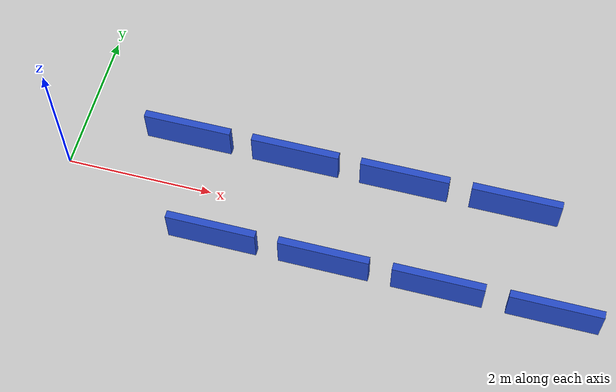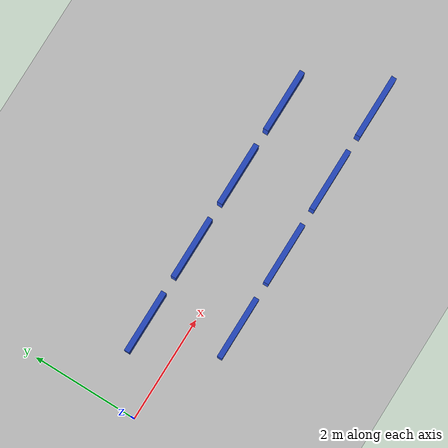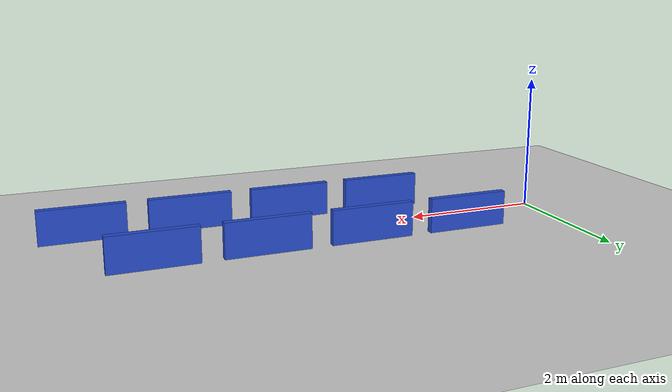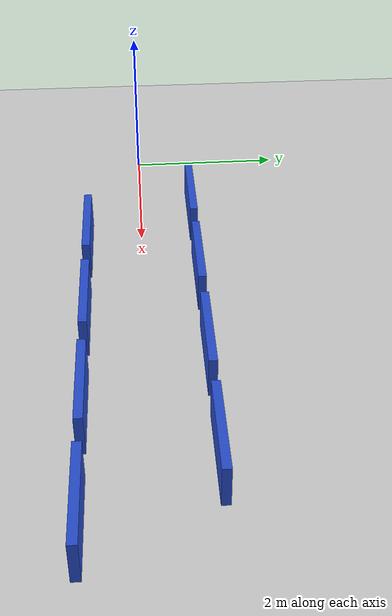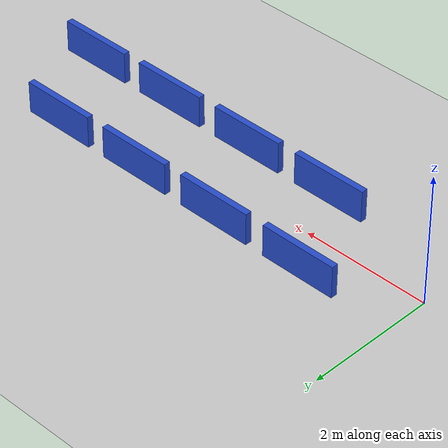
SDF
<?xml version="1.0" ?>
<!-- 由 omni_world.py 自动生成: scene=maze seed=1 -->
<sdf version="1.5">
  <world name="maze">
    <physics type="ode">
      <type>world</type>
      <max_step_size>0.001</max_step_size>
      <real_time_update_rate>1000</real_time_update_rate>
      <iters>500</iters>
    </physics>
    <include><uri>model://sun</uri></include>
    <include><uri>model://ground_plane</uri></include>
    <model name="maze_a_0">
      <static>true</static>
      <pose>1.500 0.700 0.250 0.0000 0.0000 0.0000</pose>
      <link name="link">
        <collision name="collision">
          <geometry><box><size>1.200 0.100 0.500</size></box></geometry>
          <surface><friction><ode><mu>1.0</mu><mu2>1.0</mu2></ode></friction></surface>
        </collision>
        <visual name="visual">
          <geometry><box><size>1.200 0.100 0.500</size></box></geometry>
          <material><script><uri>file://media/materials/scripts/gazebo.material</uri>
            <name>Gazebo/Blue</name></script></material>
        </visual>
      </link>
    </model>
    <model name="maze_b_0">
      <static>true</static>
      <pose>2.250 -0.700 0.250 0.0000 0.0000 0.0000</pose>
      <link name="link">
        <collision name="collision">
          <geometry><box><size>1.200 0.100 0.500</size></box></geometry>
          <surface><friction><ode><mu>1.0</mu><mu2>1.0</mu2></ode></friction></surface>
        </collision>
        <visual name="visual">
          <geometry><box><size>1.200 0.100 0.500</size></box></geometry>
          <material><script><uri>file://media/materials/scripts/gazebo.material</uri>
            <name>Gazebo/Blue</name></script></material>
        </visual>
      </link>
    </model>
    <model name="maze_a_1">
      <static>true</static>
      <pose>3.000 0.700 0.250 0.0000 0.0000 0.0000</pose>
      <link name="link">
        <collision name="collision">
          <geometry><box><size>1.200 0.100 0.500</size></box></geometry>
          <surface><friction><ode><mu>1.0</mu><mu2>1.0</mu2></ode></friction></surface>
        </collision>
        <visual name="visual">
          <geometry><box><size>1.200 0.100 0.500</size></box></geometry>
          <material><script><uri>file://media/materials/scripts/gazebo.material</uri>
            <name>Gazebo/Blue</name></script></material>
        </visual>
      </link>
    </model>
    <model name="maze_b_1">
      <static>true</static>
      <pose>3.750 -0.700 0.250 0.0000 0.0000 0.0000</pose>
      <link name="link">
        <collision name="collision">
          <geometry><box><size>1.200 0.100 0.500</size></box></geometry>
          <surface><friction><ode><mu>1.0</mu><mu2>1.0</mu2></ode></friction></surface>
        </collision>
        <visual name="visual">
          <geometry><box><size>1.200 0.100 0.500</size></box></geometry>
          <material><script><uri>file://media/materials/scripts/gazebo.material</uri>
            <name>Gazebo/Blue</name></script></material>
        </visual>
      </link>
    </model>
    <model name="maze_a_2">
      <static>true</static>
      <pose>4.500 0.700 0.250 0.0000 0.0000 0.0000</pose>
      <link name="link">
        <collision name="collision">
          <geometry><box><size>1.200 0.100 0.500</size></box></geometry>
          <surface><friction><ode><mu>1.0</mu><mu2>1.0</mu2></ode></friction></surface>
        </collision>
        <visual name="visual">
          <geometry><box><size>1.200 0.100 0.500</size></box></geometry>
          <material><script><uri>file://media/materials/scripts/gazebo.material</uri>
            <name>Gazebo/Blue</name></script></material>
        </visual>
      </link>
    </model>
    <model name="maze_b_2">
      <static>true</static>
      <pose>5.250 -0.700 0.250 0.0000 0.0000 0.0000</pose>
      <link name="link">
        <collision name="collision">
          <geometry><box><size>1.200 0.100 0.500</size></box></geometry>
          <surface><friction><ode><mu>1.0</mu><mu2>1.0</mu2></ode></friction></surface>
        </collision>
        <visual name="visual">
          <geometry><box><size>1.200 0.100 0.500</size></box></geometry>
          <material><script><uri>file://media/materials/scripts/gazebo.material</uri>
            <name>Gazebo/Blue</name></script></material>
        </visual>
      </link>
    </model>
    <model name="maze_a_3">
      <static>true</static>
      <pose>6.000 0.700 0.250 0.0000 0.0000 0.0000</pose>
      <link name="link">
        <collision name="collision">
          <geometry><box><size>1.200 0.100 0.500</size></box></geometry>
          <surface><friction><ode><mu>1.0</mu><mu2>1.0</mu2></ode></friction></surface>
        </collision>
        <visual name="visual">
          <geometry><box><size>1.200 0.100 0.500</size></box></geometry>
          <material><script><uri>file://media/materials/scripts/gazebo.material</uri>
            <name>Gazebo/Blue</name></script></material>
        </visual>
      </link>
    </model>
    <model name="maze_b_3">
      <static>true</static>
      <pose>6.750 -0.700 0.250 0.0000 0.0000 0.0000</pose>
      <link name="link">
        <collision name="collision">
          <geometry><box><size>1.200 0.100 0.500</size></box></geometry>
          <surface><friction><ode><mu>1.0</mu><mu2>1.0</mu2></ode></friction></surface>
        </collision>
        <visual name="visual">
          <geometry><box><size>1.200 0.100 0.500</size></box></geometry>
          <material><script><uri>file://media/materials/scripts/gazebo.material</uri>
            <name>Gazebo/Blue</name></script></material>
        </visual>
      </link>
    </model>

  </world>
</sdf>
